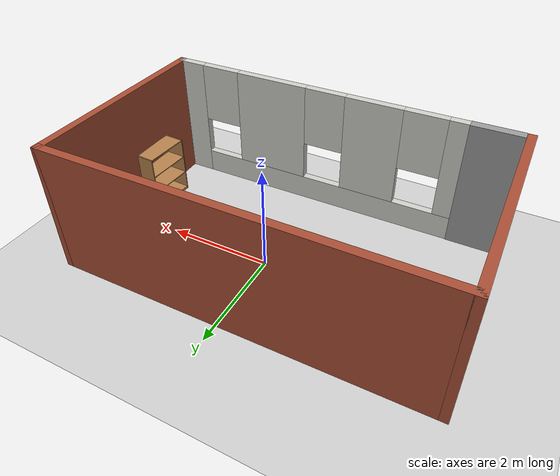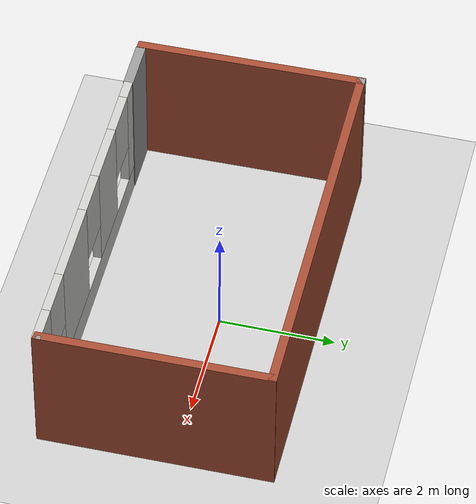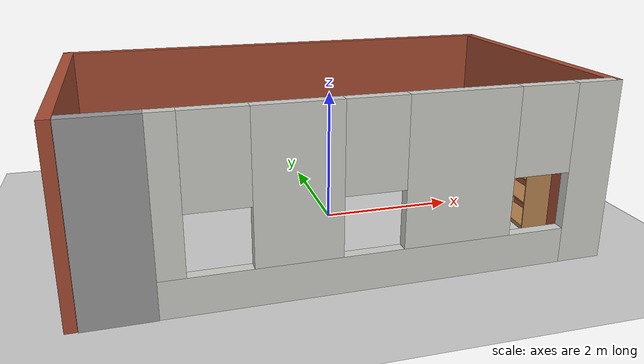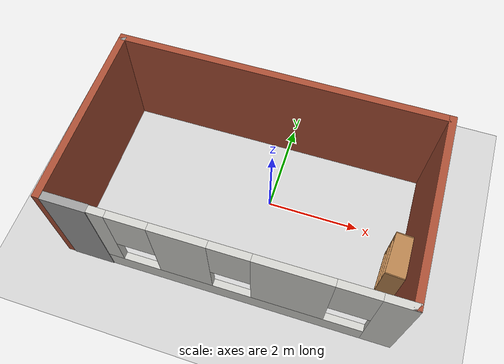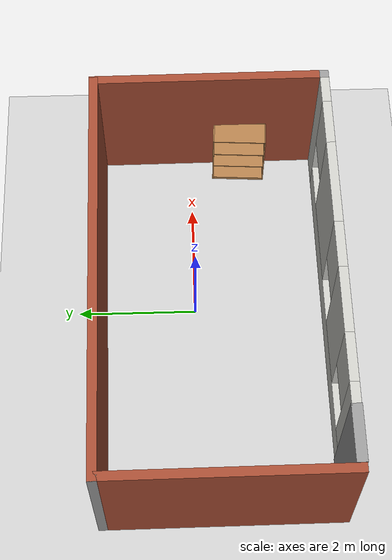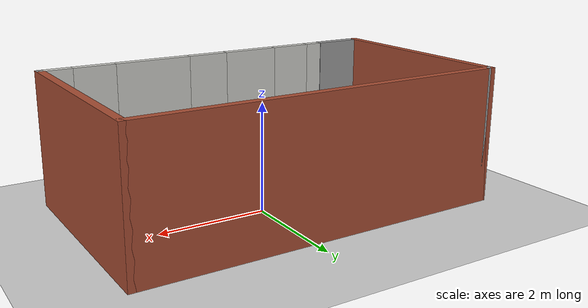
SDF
<sdf version="1.6">
 <world name="default">
  <light name="sun" type="directional">
   <pose>0 0 10 0 -0 0</pose>
   <diffuse>0.8 0.8 0.8 1</diffuse>
   <specular>0.2 0.2 0.2 1</specular>
   <attenuation>
    <range>1000</range>
    <constant>0.9</constant>
    <linear>0.01</linear>
    <quadratic>0.001</quadratic>
   </attenuation>
   <direction>-0.5 0.1 -0.9</direction>
  </light>
  <model name="ground_plane">
   <static>1</static>
   <link name="link">
    <collision name="collision">
     <geometry><plane><normal>0 0 1</normal><size>100 100</size></plane></geometry>
     <surface><friction><ode><mu>100</mu><mu2>50</mu2></ode></friction></surface>
    </collision>
    <visual name="visual">
     <cast_shadows>0</cast_shadows>
     <geometry><plane><normal>0 0 1</normal><size>100 100</size></plane></geometry>
     <material>
      <script><uri>file://media/materials/scripts/gazebo.material</uri><name>Gazebo/Grey</name></script>
     </material>
    </visual>
   </link>
  </model>
  <gravity>0 0 -9.8</gravity>
  <magnetic_field>6e-06 2.3e-05 -4.2e-05</magnetic_field>
  <atmosphere type="adiabatic"/>
  <physics name="default_physics" default="0" type="ode">
   <max_step_size>0.001</max_step_size>
   <real_time_factor>1</real_time_factor>
   <real_time_update_rate>1000</real_time_update_rate>
  </physics>
  <scene><ambient>0.4 0.4 0.4 1</ambient><background>0.7 0.7 0.7 1</background><shadows>1</shadows></scene>
  <spherical_coordinates>
   <surface_model>EARTH_WGS84</surface_model>
   <latitude_deg>0</latitude_deg>
   <longitude_deg>0</longitude_deg>
   <elevation>0</elevation>
   <heading_deg>0</heading_deg>
  </spherical_coordinates>
  <model name="room">
   <pose>-0.302849 -0.335766 0 0 -0 0.007723</pose>
   <link name="Door_0">
    <collision name="Door_0_Collision">
     <geometry><box><size>0.9 0.17 2.5</size></box></geometry>
     <pose>0 0 1.25 0 -0 0</pose>
    </collision>
    <visual name="Door_0_Visual">
     <pose>0 0 1.25 0 -0 0</pose>
     <geometry><box><size>0.9 0.17 2.5</size></box></geometry>
     <material>
      <script><uri>file://media/materials/scripts/gazebo.material</uri><name>Gazebo/Grey</name></script>
     </material>
    </visual>
    <pose>-2.905 -1.925 0 0 -0 0</pose>
   </link>
   <link name="Wall_11">
    <collision name="Wall_11_Collision">
     <geometry><box><size>4 0.15 2.5</size></box></geometry>
     <pose>0 0 1.25 0 -0 0</pose>
    </collision>
    <visual name="Wall_11_Visual">
     <pose>0 0 1.25 0 -0 0</pose>
     <geometry><box><size>4 0.15 2.5</size></box></geometry>
     <material>
      <script><uri>file://media/materials/scripts/gazebo.material</uri><name>Gazebo/Bricks</name></script>
      <ambient>1 1 1 1</ambient>
     </material>
     <meta><layer>0</layer></meta>
    </visual>
    <pose>-3.435 0 0 0 0 -1.5708</pose>
   </link>
   <link name="Wall_16">
    <collision name="Wall_16_Collision">
     <geometry><box><size>0.15 0.15 2.5</size></box></geometry>
     <pose>0 0 1.25 0 -0 0</pose>
    </collision>
    <visual name="Wall_16_Visual">
     <pose>0 0 1.25 0 -0 0</pose>
     <geometry><box><size>0.15 0.15 2.5</size></box></geometry>
     <material>
      <script><uri>file://media/materials/scripts/gazebo.material</uri><name>Gazebo/Grey</name></script>
      <ambient>1 1 1 1</ambient>
     </material>
     <meta><layer>0</layer></meta>
    </visual>
    <pose>3.435 -1.925 0 0 -0 0</pose>
   </link>
   <link name="Wall_2">
    <collision name="Wall_2_Collision">
     <geometry><box><size>0.15 0.15 2.5</size></box></geometry>
     <pose>0 0 1.25 0 -0 0</pose>
    </collision>
    <visual name="Wall_2_Visual">
     <pose>0 0 1.25 0 -0 0</pose>
     <geometry><box><size>0.15 0.15 2.5</size></box></geometry>
     <material>
      <script><uri>file://media/materials/scripts/gazebo.material</uri><name>Gazebo/Grey</name></script>
      <ambient>1 1 1 1</ambient>
     </material>
     <meta><layer>0</layer></meta>
    </visual>
    <pose>-3.435 1.925 0 0 -0 0</pose>
   </link>
   <link name="Wall_20">
    <collision name="Wall_20_Collision">
     <geometry><box><size>4 0.15 2.5</size></box></geometry>
     <pose>0 0 1.25 0 -0 0</pose>
    </collision>
    <visual name="Wall_20_Visual">
     <pose>0 0 1.25 0 -0 0</pose>
     <geometry><box><size>4 0.15 2.5</size></box></geometry>
     <material>
      <script><uri>file://media/materials/scripts/gazebo.material</uri><name>Gazebo/Bricks</name></script>
      <ambient>1 1 1 1</ambient>
     </material>
     <meta><layer>0</layer></meta>
    </visual>
    <pose>3.435 0 0 0 -0 1.5708</pose>
   </link>
   <link name="Wall_22">
    <pose>0.51 -1.925 0 0 -0 3.14159</pose>
    <visual name="Wall_22_Visual_0">
     <pose>-2.6825 0 1.25 0 -0 0</pose>
     <geometry><box><size>0.635 0.15 2.5</size></box></geometry>
     <material>
      <script><uri>file://media/materials/scripts/gazebo.material</uri><name>Gazebo/CeilingTiled</name></script>
      <ambient>1 1 1 1</ambient>
     </material>
     <meta><layer>0</layer></meta>
    </visual>
    <collision name="Wall_22_Collision_0">
     <geometry><box><size>0.635 0.15 2.5</size></box></geometry>
     <pose>-2.6825 0 1.25 0 -0 0</pose>
    </collision>
    <visual name="Wall_22_Visual_1">
     <pose>0.3175 0 0.25 0 -0 0</pose>
     <geometry><box><size>5.365 0.15 0.5</size></box></geometry>
     <material>
      <script><uri>file://media/materials/scripts/gazebo.material</uri><name>Gazebo/CeilingTiled</name></script>
      <ambient>1 1 1 1</ambient>
     </material>
     <meta><layer>0</layer></meta>
    </visual>
    <collision name="Wall_22_Collision_1">
     <geometry><box><size>5.365 0.15 0.5</size></box></geometry>
     <pose>0.3175 0 0.25 0 -0 0</pose>
    </collision>
    <visual name="Wall_22_Visual_2">
     <pose>-0.825 0 1.5 0 -0 0</pose>
     <geometry><box><size>1.48 0.15 2</size></box></geometry>
     <material>
      <script><uri>file://media/materials/scripts/gazebo.material</uri><name>Gazebo/CeilingTiled</name></script>
      <ambient>1 1 1 1</ambient>
     </material>
     <meta><layer>0</layer></meta>
    </visual>
    <collision name="Wall_22_Collision_2">
     <geometry><box><size>1.48 0.15 2</size></box></geometry>
     <pose>-0.825 0 1.5 0 -0 0</pose>
    </collision>
    <visual name="Wall_22_Visual_3">
     <pose>1.27 0 1.5 0 -0 0</pose>
     <geometry><box><size>1.11 0.15 2</size></box></geometry>
     <material>
      <script><uri>file://media/materials/scripts/gazebo.material</uri><name>Gazebo/CeilingTiled</name></script>
      <ambient>1 1 1 1</ambient>
     </material>
     <meta><layer>0</layer></meta>
    </visual>
    <collision name="Wall_22_Collision_3">
     <geometry><box><size>1.11 0.15 2</size></box></geometry>
     <pose>1.27 0 1.5 0 -0 0</pose>
    </collision>
    <visual name="Wall_22_Visual_4">
     <pose>2.8125 0 1.5 0 -0 0</pose>
     <geometry><box><size>0.375 0.15 2</size></box></geometry>
     <material>
      <script><uri>file://media/materials/scripts/gazebo.material</uri><name>Gazebo/CeilingTiled</name></script>
      <ambient>1 1 1 1</ambient>
     </material>
     <meta><layer>0</layer></meta>
    </visual>
    <collision name="Wall_22_Collision_4">
     <geometry><box><size>0.375 0.15 2</size></box></geometry>
     <pose>2.8125 0 1.5 0 -0 0</pose>
    </collision>
    <visual name="Wall_22_Visual_5">
     <pose>-1.965 0 1.9 0 -0 0</pose>
     <geometry><box><size>0.8 0.15 1.2</size></box></geometry>
     <material>
      <script><uri>file://media/materials/scripts/gazebo.material</uri><name>Gazebo/CeilingTiled</name></script>
      <ambient>1 1 1 1</ambient>
     </material>
     <meta><layer>0</layer></meta>
    </visual>
    <collision name="Wall_22_Collision_5">
     <geometry><box><size>0.8 0.15 1.2</size></box></geometry>
     <pose>-1.965 0 1.9 0 -0 0</pose>
    </collision>
    <visual name="Wall_22_Visual_6">
     <pose>0.315 0 1.9 0 -0 0</pose>
     <geometry><box><size>0.8 0.15 1.2</size></box></geometry>
     <material>
      <script><uri>file://media/materials/scripts/gazebo.material</uri><name>Gazebo/CeilingTiled</name></script>
      <ambient>1 1 1 1</ambient>
     </material>
     <meta><layer>0</layer></meta>
    </visual>
    <collision name="Wall_22_Collision_6">
     <geometry><box><size>0.8 0.15 1.2</size></box></geometry>
     <pose>0.315 0 1.9 0 -0 0</pose>
    </collision>
    <visual name="Wall_22_Visual_7">
     <pose>2.225 0 1.9 0 -0 0</pose>
     <geometry><box><size>0.8 0.15 1.2</size></box></geometry>
     <material>
      <script><uri>file://media/materials/scripts/gazebo.material</uri><name>Gazebo/CeilingTiled</name></script>
      <ambient>1 1 1 1</ambient>
     </material>
     <meta><layer>0</layer></meta>
    </visual>
    <collision name="Wall_22_Collision_7">
     <geometry><box><size>0.8 0.15 1.2</size></box></geometry>
     <pose>2.225 0 1.9 0 -0 0</pose>
    </collision>
   </link>
   <link name="Wall_8">
    <collision name="Wall_8_Collision">
     <geometry><box><size>7 0.15 2.5</size></box></geometry>
     <pose>0 0 1.25 0 -0 0</pose>
    </collision>
    <visual name="Wall_8_Visual">
     <pose>0 0 1.25 0 -0 0</pose>
     <geometry><box><size>7 0.15 2.5</size></box></geometry>
     <material>
      <script><uri>file://media/materials/scripts/gazebo.material</uri><name>Gazebo/Bricks</name></script>
      <ambient>1 1 1 1</ambient>
     </material>
     <meta><layer>0</layer></meta>
    </visual>
    <pose>-0.01 1.925 0 0 -0 0</pose>
   </link>
   <static>1</static>
  </model>
  <model name="bookshelf">
   <static>1</static>
   <link name="link">
    <inertial><mass>1</mass></inertial>
    <collision name="back">
     <pose>0 0.005 0.6 0 -0 0</pose>
     <geometry><box><size>0.9 0.01 1.2</size></box></geometry>
    </collision>
    <visual name="visual1">
     <pose>0 0.005 0.6 0 -0 0</pose>
     <geometry><box><size>0.9 0.01 1.2</size></box></geometry>
     <material>
      <script><uri>file://media/materials/scripts/gazebo.material</uri><name>Gazebo/Wood</name></script>
     </material>
    </visual>
    <collision name="left_side">
     <pose>0.45 -0.195 0.6 0 -0 0</pose>
     <geometry><box><size>0.02 0.4 1.2</size></box></geometry>
    </collision>
    <visual name="visual2">
     <pose>0.45 -0.195 0.6 0 -0 0</pose>
     <geometry><box><size>0.02 0.4 1.2</size></box></geometry>
     <material>
      <script><uri>file://media/materials/scripts/gazebo.material</uri><name>Gazebo/Wood</name></script>
     </material>
    </visual>
    <collision name="right_side">
     <pose>-0.45 -0.195 0.6 0 -0 0</pose>
     <geometry><box><size>0.02 0.4 1.2</size></box></geometry>
    </collision>
    <visual name="visual3">
     <pose>-0.45 -0.195 0.6 0 -0 0</pose>
     <geometry><box><size>0.02 0.4 1.2</size></box></geometry>
     <material>
      <script><uri>file://media/materials/scripts/gazebo.material</uri><name>Gazebo/Wood</name></script>
     </material>
    </visual>
    <collision name="bottom">
     <pose>0 -0.195 0.03 0 -0 0</pose>
     <geometry><box><size>0.88 0.4 0.06</size></box></geometry>
    </collision>
    <visual name="visual4">
     <pose>0 -0.195 0.03 0 -0 0</pose>
     <geometry><box><size>0.88 0.4 0.06</size></box></geometry>
     <material>
      <script><uri>file://media/materials/scripts/gazebo.material</uri><name>Gazebo/Wood</name></script>
     </material>
    </visual>
    <collision name="top">
     <pose>0 -0.195 1.19 0 -0 0</pose>
     <geometry><box><size>0.88 0.4 0.02</size></box></geometry>
    </collision>
    <visual name="visual5">
     <pose>0 -0.195 1.19 0 -0 0</pose>
     <geometry><box><size>0.88 0.4 0.02</size></box></geometry>
     <material>
      <script><uri>file://media/materials/scripts/gazebo.material</uri><name>Gazebo/Wood</name></script>
     </material>
    </visual>
    <collision name="low_shelf">
     <pose>0 -0.195 0.43 0 -0 0</pose>
     <geometry><box><size>0.88 0.4 0.02</size></box></geometry>
    </collision>
    <visual name="visual6">
     <pose>0 -0.195 0.43 0 -0 0</pose>
     <geometry><box><size>0.88 0.4 0.02</size></box></geometry>
     <material>
      <script><uri>file://media/materials/scripts/gazebo.material</uri><name>Gazebo/Wood</name></script>
     </material>
    </visual>
    <collision name="high_shelf">
     <pose>0 -0.195 0.8 0 -0 0</pose>
     <geometry><box><size>0.88 0.4 0.02</size></box></geometry>
    </collision>
    <visual name="visual7">
     <pose>0 -0.195 0.8 0 -0 0</pose>
     <geometry><box><size>0.88 0.4 0.02</size></box></geometry>
     <material>
      <script><uri>file://media/materials/scripts/gazebo.material</uri><name>Gazebo/Wood</name></script>
     </material>
    </visual>
   </link>
   <pose>3.07545 -0.861675 0 0 0 -1.62572</pose>
  </model>
 </world>
</sdf>
